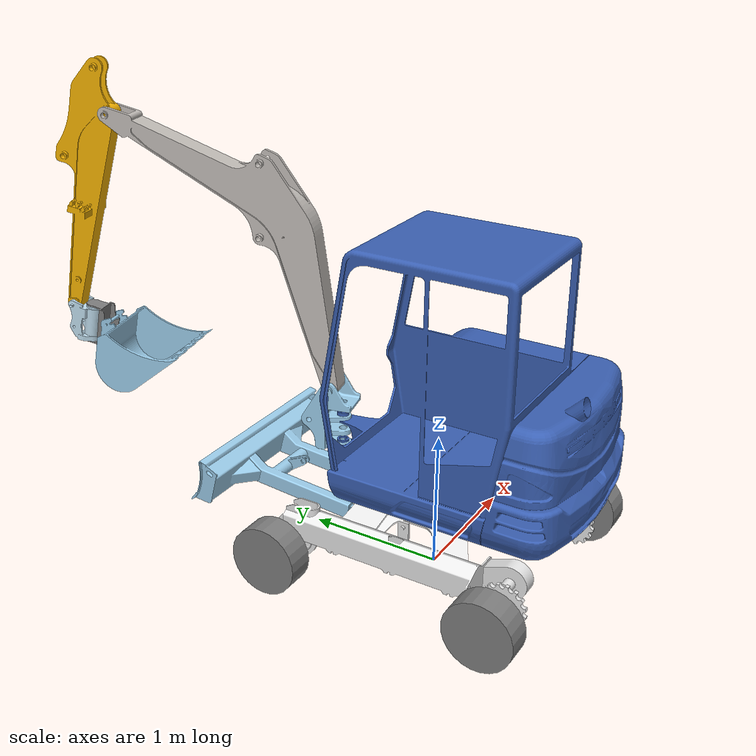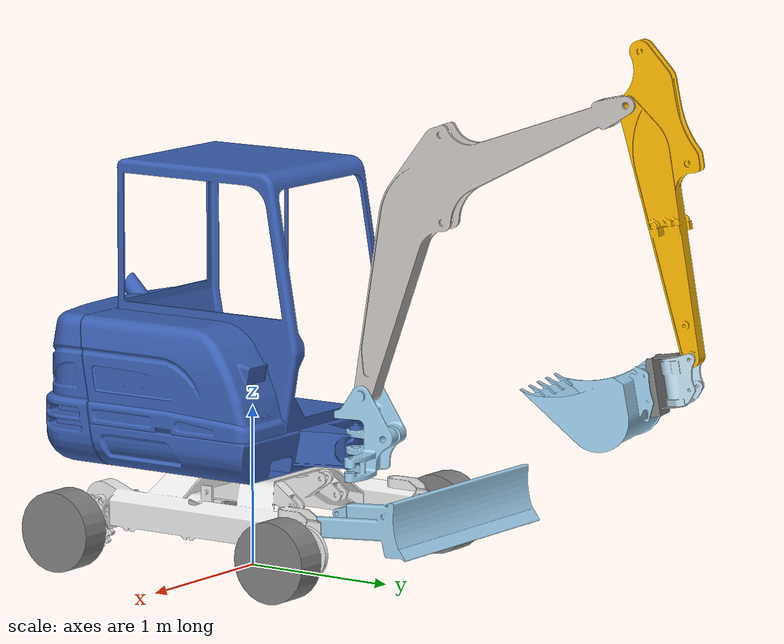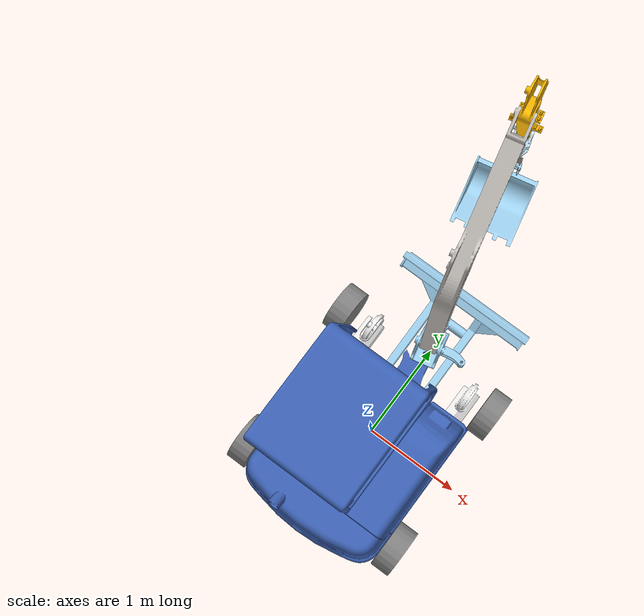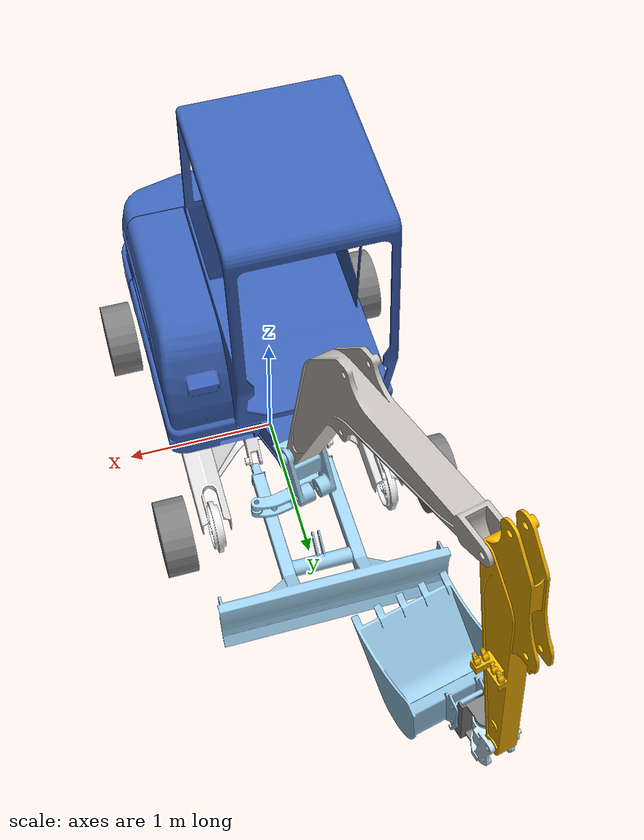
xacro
<?xml version="1.0"?>
<robot xmlns:xacro="http://www.ros.org/wiki/xacro" name="onshape">

    <xacro:property name="mesh_root" value="file://$(find urdf_visualize)/meshes"/>

    <xacro:property name="cabin_base_mesh" value="${mesh_root}/compact_excavator_cabin_body.stl"/>
    <xacro:property name="cabin_base_origin" value="0.1592 -0.2513 0.2814"/>
    <xacro:property name="cabin_base_rpy" value="0 0 0"/>
    <xacro:property name="cabin_base_mass" value="9732.8039"/>
    <xacro:property name="cabin_inertial_origin" value="-0.1469 0.4412 0.4509"/>
    <xacro:property name="cabin_inertial_rpy" value="0 0 0"/>
    <xacro:property name="cabin_base_material" value="0.2314 0.3804 0.7059 1.0"/>

    <xacro:property name="turret_base_mesh" value="${mesh_root}/compact_excavator_frame_body.stl"/>
    <xacro:property name="turret_base_origin" value="0 0 0"/>
    <xacro:property name="turret_base_rpy" value="0 0 0"/>
    <xacro:property name="turret_base_mass" value="459.1171"/>
    <xacro:property name="turret_base_inertial_origin" value="-0.0068 -0.1255 -0.1865"/>
    <xacro:property name="turret_base_inertial_rpy" value="0 0 0"/>
    <xacro:property name="turret_base_material" value="0.9176 0.9176 0.9176 1.0"/>

    <!-- Original base link -->
    <link name="base_link"/>
    <link name="cabin_base">
        <visual>
            <origin xyz="${cabin_base_origin}" rpy="${cabin_base_rpy}" />
            <geometry>
                <mesh filename="${cabin_base_mesh}"/>
            </geometry>
            <material name="compact_excavator_cabin_body_material">
                <color rgba="${cabin_base_material}"/>
            </material>
        </visual>
        <collision>
            <origin xyz="${cabin_base_origin}" rpy="${cabin_base_rpy}" />
            <geometry>
                <mesh filename="${cabin_base_mesh}"/>
            </geometry>
        </collision>
        <inertial>
            <origin xyz="${cabin_inertial_origin}" rpy="${cabin_inertial_rpy}"/>
            <mass value="${cabin_base_mass}" />
            <inertia ixx="3175.1655302028038932" ixy="-269.97312494382822479"  ixz="167.61780128589879268" iyy="2627.6328649732372469" iyz="-193.85494965010886403" izz="3742.616047274826542" />
        </inertial>
    </link>
    <link name="turret_base">
        <visual>
            <origin xyz="${turret_base_origin}" rpy="${turret_base_rpy}" />
            <geometry>
                <mesh filename="${turret_base_mesh}"/>
            </geometry>
            <material name="compact_excavator_frame_body_material">
                <color rgba="${turret_base_material}"/>
            </material>
        </visual>
        <collision>
            <origin xyz="${turret_base_origin}" rpy="${turret_base_rpy}" />
            <geometry>
                <mesh filename="${turret_base_mesh}"/>
            </geometry>
        </collision>
        <inertial>
            <origin xyz="${turret_base_inertial_origin}" rpy="${turret_base_inertial_rpy}"/>
            <mass value="${turret_base_mass}" />
            <inertia ixx="103.54309263053609413" ixy="2.8689912175751035583"  ixz="-0.26918599165092144121" iyy="71.550382439979060223" iyz="-8.7881744003938315757" izz="164.71779214088334697" />
        </inertial>
    </link>

    <link name="left_spinning_wheel_link">
        <visual>
            <origin xyz="0 -2.0816681711721685133e-17 -0.015000000000000124345" rpy="-4.71 0 0" />
            <geometry>
            <mesh filename="${mesh_root}/compact_excavator_main_drive_wheel.stl"/>
            </geometry>
            <material name="compact_excavator_main_drive_wheel_material">
            <color rgba="0.91764705882352937127 0.91764705882352937127 0.91764705882352937127 1.0"/>
            </material>
        </visual>
        <collision>
            <origin xyz="0 -2.0816681711721685133e-17 -0.015000000000000124345" rpy="-4.71 0 0" />
            <geometry>
            <mesh filename="${mesh_root}/compact_excavator_main_drive_wheel.stl"/>
            </geometry>
        </collision>
        <inertial>
            <origin xyz="2.7929494467705319618e-05 -2.4226277708340838271e-16 -0.047030821852304713349" rpy="0 0 0"/>
            <mass value="35.986291345795820007" />
            <inertia ixx="0.20071737580058110484" ixy="2.1151248144254331483e-17"  ixz="7.9696042408110000254e-05" iyy="0.20066206838835709547" iyz="2.9623558171777900037e-16" izz="0.29333573070696433716" />
        </inertial>
    </link>

    <link name="right_spinning_wheel_link">
        <visual>
            <origin xyz="-6.9388939039072283776e-18 0 -0.015000000000000013323" rpy="1.57 0 0" />
            <geometry>
            <mesh filename="${mesh_root}/compact_excavator_main_drive_wheel.stl"/>
            </geometry>
            <material name="compact_excavator_main_drive_wheel_material">
            <color rgba="0.91764705882352937127 0.91764705882352937127 0.91764705882352937127 1.0"/>
            </material>
        </visual>
        <collision>
            <origin xyz="-6.9388939039072283776e-18 0 -0.015000000000000013323" rpy="1.57 0 0" />
            <geometry>
            <mesh filename="${mesh_root}/compact_excavator_main_drive_wheel.stl"/>
            </geometry>
        </collision>
        <inertial>
            <origin xyz="2.7929494467698390888e-05 -2.2144767850277592569e-16 -0.047030821852304602326" rpy="0 0 0"/>
            <mass value="35.986291345795820007" />
            <inertia ixx="0.20071737580058127137" ixy="6.1250580134766935832e-18"  ixz="7.9696042408110027359e-05" iyy="0.20066206838835703996" iyz="2.9623106429686494369e-16" izz="0.29333573070696433716" />
        </inertial>
    </link>

    <link name="left_front_wheel_link">
        <visual>
            <origin xyz="1.1102230246251565404e-16 -1.1102230246251565404e-16 -0.032500000000000084377" rpy="0 1.570796326794896336 0" />
            <geometry>
            <mesh filename="${mesh_root}/compact_excavator_front_wheel.stl"/>
            </geometry>
            <material name="compact_excavator_front_wheel_material">
            <color rgba="0.91764705882352937127 0.91764705882352937127 0.91764705882352937127 1.0"/>
            </material>
        </visual>
        <collision>
            <origin xyz="1.1102230246251565404e-16 -1.1102230246251565404e-16 -0.032500000000000084377" rpy="0 1.570796326794896336 0" />
            <geometry>
            <mesh filename="${mesh_root}/compact_excavator_front_wheel.stl"/>
            </geometry>
        </collision>
        <inertial>
            <origin xyz="8.8979772495497043726e-17 -1.1262368284473494847e-16 -0.032500000000000070499" rpy="0 0 0"/>
            <mass value="17.64673591392957519" />
            <inertia ixx="0.153078316536178205" ixy="1.0629206596102168903e-17"  ixz="2.6922495826861160064e-17" iyy="0.15307831653617814949" iyz="6.9747558075870228735e-33" izz="0.29963755764746907717" />
        </inertial>
    </link>

    <link name="right_front_wheel_link">
        <visual>
            <origin xyz="0 0 -0.032500000000000084377" rpy="-3.14 -1.570796326794896336 0" />
            <geometry>
            <mesh filename="${mesh_root}/compact_excavator_front_wheel.stl"/>
            </geometry>
            <material name="compact_excavator_front_wheel_material">
            <color rgba="0.91764705882352937127 0.91764705882352937127 0.91764705882352937127 1.0"/>
            </material>
        </visual>
        <collision>
            <origin xyz="0 0 -0.032500000000000084377" rpy="-3.14 -1.570796326794896336 0" />
            <geometry>
            <mesh filename="${mesh_root}/compact_excavator_front_wheel.stl"/>
            </geometry>
        </collision>
        <inertial>
            <origin xyz="-2.2042529967018601071e-17 1.6013803822193002062e-18 -0.032500000000000098255" rpy="0 0 0"/>
            <mass value="17.64673591392957519" />
            <inertia ixx="0.153078316536178205" ixy="-3.7736718547636912232e-33"  ixz="-2.6922495826861147738e-17" iyy="0.153078316536178205" iyz="-6.9321227369532044948e-49" izz="0.29963755764746907717" />
        </inertial>
    </link>

    <link name="push_blade_bucket">
        <visual>
            <origin xyz="-0.021564399534920564161 1.0799900599760599018 -0.25500000000000000444" rpy="-3.14 -1.57 0" />
            <geometry>
            <mesh filename="${mesh_root}/push_blade_bucket.stl"/>
            </geometry>
            <material name="push_blade_bucket_material">
            <color rgba="0.61568627450980395466 0.81176470588235294379 0.92941176470588238168 1.0"/>
            </material>
        </visual>
        <collision>
            <origin xyz="-0.021564399534920564161 1.0799900599760599018 -0.25500000000000000444" rpy="-3.14 -1.57 0" />
            <geometry>
            <mesh filename="${mesh_root}/push_blade_bucket.stl"/>
            </geometry>
        </collision>
        <inertial>
            <origin xyz="-0.10970493109347190241 0.88075063461342828486 -0.25500033703320834633" rpy="0 0 0"/>
            <mass value="147.01808168083425699" />
            <inertia ixx="31.881096131626421197" ixy="0.91247385061899932701"  ixz="-1.6212090668492922982e-05" iyy="21.196220352263214437" iyz="4.9900082202379639952e-06" izz="13.169227707961496776" />
        </inertial>
    </link>

    <link name="swing_base">
        <visual>
            <origin xyz="2.7755575615628913511e-17 0.074999999999999955591 -0.14999999999999996669" rpy="-3.14 -6.1629758220391547298e-33 -3.9110122218931175387e-17" />
            <geometry>
            <mesh filename="${mesh_root}/part01_pin_1.stl"/>
            </geometry>
            <material name="part01_pin_1_material">
            <color rgba="0.61568627450980395466 0.81176470588235294379 0.92941176470588238168 1.0"/>
            </material>
        </visual>
        <collision>
            <origin xyz="2.7755575615628913511e-17 0.074999999999999955591 -0.14999999999999996669" rpy="-3.14 -6.1629758220391547298e-33 -3.9110122218931175387e-17" />
            <geometry>
            <mesh filename="${mesh_root}/part01_pin_1.stl"/>
            </geometry>
        </collision>
        <inertial>
            <origin xyz="-0.026030309007671018073 0.10672288733099301317 0.097553850513847364945" rpy="0 0 0"/>
            <mass value="98.140190062279060612" />
            <inertia ixx="2.6085778666185075458" ixy="0.040227300901953748358"  ixz="0.42136783119553594679" iyy="3.1665232143977135593" iyz="-0.15916376835413623136" izz="1.7889951810686841593" />
        </inertial>
    </link>

    <link name="boom_base">
        <visual>
            <origin xyz="0 -1.1102230246251565404e-16 -0.079999999999999987788" rpy="-1.57 0 0" />
            <geometry>
            <mesh filename="${mesh_root}/part02.stl"/>
            </geometry>
            <material name="part02_material">
            <color rgba="0.77647058823529413463 0.7568627450980391913 0.73725490196078435901 1.0"/>
            </material>
        </visual>
        <collision>
            <origin xyz="0 -1.1102230246251565404e-16 -0.079999999999999987788" rpy="-1.57 0 0" />
            <geometry>
            <mesh filename="${mesh_root}/part02.stl"/>
            </geometry>
        </collision>
        <inertial>
            <origin xyz="-0.04007940207094668611 1.215334476695421273 -0.079873417172118876817" rpy="0 0 0"/>
            <mass value="694.17793513858055121" />
            <inertia ixx="242.81245205849677404" ixy="71.370938403077758494"  ixz="0.0065905643878567711502" iyy="49.641340591529456105" iyz="-0.034260052091464154866" izz="289.83702909122945357" />
        </inertial>
    </link>

    <link name="arm_base">
        <visual>
            <origin xyz="0 -2.2204460492503130808e-16 -0.054999999999999882316" rpy="1.57 0 0" />
            <geometry>
            <mesh filename="${mesh_root}/part03.stl"/>
            </geometry>
            <material name="part03_material">
            <color rgba="0.98039215686274505668 0.71372549019607844922 0.0039215686274509803377 1.0"/>
            </material>
        </visual>
        <collision>
            <origin xyz="0 -2.2204460492503130808e-16 -0.054999999999999882316" rpy="1.57 0 0" />
            <geometry>
            <mesh filename="${mesh_root}/part03.stl"/>
            </geometry>
        </collision>
        <inertial>
            <origin xyz="0.10866226733951289685 -0.60164797350906107365 -0.055167291851018741833" rpy="0 0 0"/>
            <mass value="265.34907807560875881" />
            <inertia ixx="57.599134249663784146" ixy="0.078442580554215754485"  ixz="0.0049826290162324230956" iyy="1.8968981412117758012" iyz="0.02459901605653430981" izz="58.868680211308259231" />
        </inertial>
    </link>

    <link name="bucket_base">
        <visual>
            <origin xyz="0.060000000000000053291 0.14000000000000012434 0.054999999999999993339" rpy="-3.14 -1.57 0" />
            <geometry>
            <mesh filename="${mesh_root}/part04.stl"/>
            </geometry>
            <material name="part04_material">
            <color rgba="0.76862745098039220171 0.88627450980392152857 0.95294117647058818044 1.0"/>
            </material>
        </visual>
        <collision>
            <origin xyz="0.060000000000000053291 0.14000000000000012434 0.054999999999999993339" rpy="-3.14 -1.57 0" />
            <geometry>
            <mesh filename="${mesh_root}/part04.stl"/>
            </geometry>
        </collision>

        <visual>
            <origin xyz="0.078718096856630614955 0.97961106773940276327 0.054999999999992416067" rpy="-1.57 0 3" />
            <geometry>
            <mesh filename="${mesh_root}/bucket.stl"/>
            </geometry>
            <material name="bucket_material">
            <color rgba="0.61568627450980395466 0.81176470588235294379 0.92941176470588238168 1.0"/>
            </material>
        </visual>
        <collision>
            <origin xyz="0.078718096856630614955 0.97961106773940276327 0.054999999999992416067" rpy="-1.57 0 3" />
            <geometry>
            <mesh filename="${mesh_root}/bucket.stl"/>
            </geometry>
        </collision>

        <visual>
            <origin xyz="0.16999999999999237943 0.30800000000000604672 0.054999999999999299449" rpy="-4.71 -1.57 0" />
            <geometry>
            <mesh filename="${mesh_root}/bucket_mount.stl"/>
            </geometry>
            <material name="bucket_mount_material">
            <color rgba="0.49803921568627451677 0.49803921568627451677 0.49803921568627451677 1.0"/>
            </material>
        </visual>
        <collision>
            <origin xyz="0.16999999999999237943 0.30800000000000604672 0.054999999999999299449" rpy="-4.71 -1.57 0" />
            <geometry>
            <mesh filename="${mesh_root}/bucket_mount.stl"/>
            </geometry>
        </collision>
        <inertial>
            <origin xyz="0.21363777998579594475 0.42618058483691984017 0.055071497454761988988" rpy="0 0 0"/>
            <mass value="132.70765933863819441" />
            <inertia ixx="14.03567187790122972" ixy="-1.6652440163767181502"  ixz="0.0020270508814650067472" iyy="6.8549730106956987541" iyz="0.0040437120644442776929" izz="11.610921270718170817" />
        </inertial>
    </link>

    <xacro:property name="rubber_density" value="1100"/>
    <xacro:property name="wheel_radius" value="0.25"/>
    <xacro:property name="wheel_length" value="0.2"/>
    <xacro:property name="wheel_mass" value="${100*3.1415*(wheel_radius**2)*wheel_length*rubber_density}"/>
    <xacro:property name="wheel_ixx" value="${(1/12)*wheel_mass*(3*wheel_radius**2 + wheel_length**2)}"/>
    <xacro:property name="wheel_iyy" value="${(1/12)*wheel_mass*(3*wheel_radius**2 + wheel_length**2)}"/>
    <xacro:property name="wheel_izz" value="${(1/2)*wheel_mass*wheel_radius**2}"/>

    <link name="left_skid_wheel_spinning">
        <visual>
            <origin xyz="0 0 0" rpy="0 0 0"/>
            <geometry>
                <cylinder radius="${wheel_radius}" length="${wheel_length}"/>
            </geometry>
            <material name="wheel_material">
                <color rgba="0.5 0.5 0.5 1.0"/>
            </material>
        </visual>
        <collision>
            <origin xyz="0 0 0" rpy="0 0 0"/>
            <geometry>
                <cylinder radius="${wheel_radius}" length="${wheel_length}"/>
            </geometry>
        </collision>
        <surface>
            <friction>
                <ode>
                    <mu>1</mu>
                    <mu2>1</mu2>
                </ode>
            </friction>
        </surface>
        <inertial>
            <origin xyz="0 0 0" rpy="0 0 0"/>
            <mass value="${wheel_mass}"/>
            <inertia ixx="${wheel_ixx}" ixy="0" ixz="0" iyy="${wheel_ixx}" iyz="0" izz="${wheel_ixx}"/>
        </inertial>
    </link>

    <link name="left_skid_wheel_free">
        <visual>
            <origin xyz="0 0 0" rpy="0 0 0"/>
            <geometry>
                <cylinder radius="${wheel_radius}" length="${wheel_length}"/>
            </geometry>
            <material name="wheel_material">
                <color rgba="0.5 0.5 0.5 1.0"/>
            </material>
        </visual>
        <collision>
            <origin xyz="0 0 0" rpy="0 0 0"/>
            <geometry>
                <cylinder radius="${wheel_radius}" length="${wheel_length}"/>
            </geometry>
        </collision>
        <surface>
            <friction>
                <ode>
                    <mu>1</mu>
                    <mu2>1</mu2>
                </ode>
            </friction>
        </surface>
        <inertial>
            <origin xyz="0 0 0" rpy="0 0 0"/>
            <mass value="${wheel_mass}"/>
            <inertia ixx="${wheel_ixx}" ixy="0" ixz="0" iyy="${wheel_ixx}" iyz="0" izz="${wheel_ixx}"/>
        </inertial>
    </link>

    <link name="right_skid_wheel_spinning">
        <visual>
            <origin xyz="0 0 0" rpy="0 0 0"/>
            <geometry>
                <cylinder radius="${wheel_radius}" length="${wheel_length}"/>
            </geometry>
            <material name="wheel_material">
                <color rgba="0.5 0.5 0.5 1.0"/>
            </material>
        </visual>
        <collision>
            <origin xyz="0 0 0" rpy="0 0 0"/>
            <geometry>
                <cylinder radius="${wheel_radius}" length="${wheel_length}"/>
            </geometry>
        </collision>
        <surface>
            <friction>
                <ode>
                    <mu>1</mu>
                    <mu2>1</mu2>
                </ode>
            </friction>
        </surface>
        <inertial>
            <origin xyz="0 0 0" rpy="0 0 0"/>
            <mass value="${wheel_mass}"/>
            <inertia ixx="${wheel_ixx}" ixy="0" ixz="0" iyy="${wheel_ixx}" iyz="0" izz="${wheel_ixx}"/>
        </inertial>
    </link>

    <link name="right_skid_wheel_free">
        <visual>
            <origin xyz="0 0 0" rpy="0 0 0"/>
            <geometry>
                <cylinder radius="${wheel_radius}" length="${wheel_length}"/>
            </geometry>
            <material name="wheel_material">
                <color rgba="0.5 0.5 0.5 1.0"/>
            </material>
        </visual>
        <collision>
            <origin xyz="0 0 0" rpy="0 0 0"/>
            <geometry>
                <cylinder radius="${wheel_radius}" length="${wheel_length}"/>
            </geometry>
        </collision>
        <surface>
            <friction>
                <ode>
                    <mu>1</mu>
                    <mu2>1</mu2>
                </ode>
            </friction>
        </surface>
        <inertial>
            <origin xyz="0 0 0" rpy="0 0 0"/>
            <mass value="${wheel_mass}"/>
            <inertia ixx="${wheel_ixx}" ixy="0" ixz="0" iyy="${wheel_ixx}" iyz="0" izz="${wheel_ixx}"/>
        </inertial>
    </link>

    <xacro:macro name="gazebo_joints">
        <gazebo>
            <joint>
                <stiffness>1000.0</stiffness>
                <damping>500</damping>
            </joint>
        </gazebo>
    </xacro:macro>

    <joint name="left_spin_to_skid" type="fixed">
        <origin xyz="0 0 -0.3" rpy="0 0 0"/>
        <parent link="left_spinning_wheel_link"/>
        <child link="left_skid_wheel_spinning"/>
        <axis xyz="0 0 1"/>
        <xacro:gazebo_joints/>
    </joint>

    <joint name="left_free_to_skid" type="fixed">
        <origin xyz="0 0 0.3" rpy="0 0 0"/>
        <parent link="left_front_wheel_link"/>
        <child link="left_skid_wheel_free"/>
        <axis xyz="0 0 1"/>
        <xacro:gazebo_joints/>
    </joint>

    <joint name="right_spin_to_skid" type="fixed">
        <origin xyz="0 0 -0.3" rpy="0 0 0"/>
        <parent link="right_spinning_wheel_link"/>
        <child link="right_skid_wheel_spinning"/>
        <axis xyz="0 0 1"/>
        <xacro:gazebo_joints/>
    </joint>

    <joint name="right_free_to_skid" type="fixed">
        <origin xyz="0 0 -0.3" rpy="0 0 0"/>
        <parent link="right_front_wheel_link"/>
        <child link="right_skid_wheel_free"/>
        <axis xyz="0 0 1"/>
        <limit effort="1000" velocity="1"/>
        <xacro:gazebo_joints/>
    </joint>

    <joint name="base_to_turret" type="fixed">
        <origin xyz="0 0 0.55" rpy="0 0 0" />
        <parent link="base_link" />
        <child link="turret_base" />
        <axis xyz="0 0 1"/>
    </joint>

    <joint name="left_spinning_wheel" type="continuous">
        <origin xyz="-0.5739999999999999547 -0.80000000000000015543 -0.2750000000000000222" rpy="1.570796326794896558 -0.3547477759675310427 1.5707963267948976682" />
        <parent link="turret_base" />
        <child link="left_spinning_wheel_link" />
        <axis xyz="0 0 1"/>
        <limit effort="1000" velocity="1" />
        <xacro:gazebo_joints/>
    </joint>

    <joint name="right_spinning_wheel" type="continuous">
        <origin xyz="0.5739999999999999547 -0.80000000000000004441 -0.2750000000000000222" rpy="1.570796326794896558 -1.2984776443375001254 -1.5707963267948972241" />
        <parent link="turret_base" />
        <child link="right_spinning_wheel_link" />
        <axis xyz="0 0 1"/>
        <limit effort="1000" velocity="1" />
        <xacro:gazebo_joints/>
    </joint>

    <joint name="left_passive_wheel" type="continuous">
        <origin xyz="-0.61299999999999998934 0.80000000000000026645 -0.2750000000000000222" rpy="1.570796326794896558 -1.0222876983448163646 -1.5707963267948941155" />
        <parent link="turret_base" />
        <child link="left_front_wheel_link" />
        <axis xyz="0 0 1"/>
        <limit effort="1000" velocity="1" />
        <xacro:gazebo_joints/>
    </joint>

    <joint name="right_passive_wheel" type="continuous">
        <origin xyz="0.54800000000000004263 0.80000000000000015543 -0.27499999999999996669" rpy="1.57079632679489678 -1.1102232252180887662e-16 -1.5707963267948976682" />
        <parent link="turret_base" />
        <child link="right_front_wheel_link" />
        <axis xyz="0 0 1"/>
        <limit effort="1000" velocity="1" />
        <xacro:gazebo_joints/>
    </joint>

    <joint name="plow_to_base" type="revolute">
        <origin xyz="-0.25500000000000005995 0.4880000000000002669 -0.20500000000000001554" rpy="1.570796326794896558 -1.3195606112546109934 -1.57079632679489678" />
        <parent link="turret_base" />
        <child link="push_blade_bucket" />
        <axis xyz="0 0 1"/>
        <limit effort="1000" velocity="1" lower="0.2" upper="0" />
        <xacro:gazebo_joints/>
    </joint>

    <joint name="excavator_slew" type="continuous">
        <origin xyz="0 0 0.1" rpy="-5.5511151231419568159e-17 -1.1102230246202266528e-16 -3.1415" />
        <parent link="turret_base" />
        <child link="cabin_base" />
        <axis xyz="0 0 1"/>
        <limit effort="1000" velocity="1" />
        <xacro:gazebo_joints/>
    </joint>

    <joint name="arm_to_bucket" type="revolute">
        <origin xyz="0.12000000000000410338 -1.5403327562575612752 9.4368957093138305936e-16" rpy="3.1415926535897917837 1.8859935444767496044e-16 -1.5963552846072552871" />
        <parent link="arm_base" />
        <child link="bucket_base" />
        <axis xyz="0 0 1"/>
        <limit effort="1000" velocity="1" lower="-1.2217304763960306069" upper="0.87266462599716476678"/>
        <xacro:gazebo_joints/>
    </joint>

    <joint name="boom_to_arm" type="revolute">
        <origin xyz="-0.84000000000000030198 2.3549999999999999822 -0.13500000000000003664" rpy="3.1415926535897922278 6.9325343981756730312e-15 2.5555644018935783635" />
        <parent link="boom_base" />
        <child link="arm_base" />
        <axis xyz="0 0 1"/>
        <limit effort="1000" velocity="1" lower="-0.5" upper="1.57"/>
        <xacro:gazebo_joints/>
    </joint>

    <joint name="swing_to_boom" type="revolute">
        <origin xyz="0.079999999999996157518 0.074999999999997291056 -0.1500000000000039635" rpy="-1.570796326794896558 0.39285813115170314935 -1.5707963267949009989" />
        <parent link="swing_base" />
        <child link="boom_base" />
        <axis xyz="0 0 1"/>
        <limit effort="1000" velocity="1" lower="-0.4" upper="0.4" />
        <xacro:gazebo_joints/>
    </joint>

    <joint name="cabin_to_swing" type="revolute">
        <origin xyz="-0.040707723917193447405 -0.80673603465099630316 0.38039999999999996039" rpy="3.141592653589793116 4.8797124238540929311e-17 0.21446312817660284633" />
        <parent link="cabin_base" />
        <child link="swing_base" />
        <axis xyz="0 0 1"/>
        <limit effort="1000" velocity="1" lower="-1" upper="1.57" />
        <xacro:gazebo_joints/>
    </joint>

    <xacro:macro name="gazebo_ros2_control_joints" params="name">
        <joint name="${name}">
            <command_interface name="effort">
                <param name="min">-1000</param>
                <param name="max">1000</param>
            </command_interface>
            <state_interface name="position"/>
            <state_interface name="velocity"/>
            <state_interface name="effort"/>
        </joint>
    </xacro:macro>
    <xacro:macro name="simple_transmission" params="name">
        <transmission name="${name}_trans">
            <type>transmission_interface/SimpleTransmission</type>
            <joint name="${name}">
            <hardwareInterface>effort</hardwareInterface>
            </joint>
            <actuator name="${name}_motor">
            <hardwareInterface>effort</hardwareInterface>
            <mechanicalReduction>1</mechanicalReduction>
            </actuator>
        </transmission>
    </xacro:macro>

    <xacro:simple_transmission name="excavator_slew"/>
    <xacro:simple_transmission name="plow_to_base"/>
    <xacro:simple_transmission name="arm_to_bucket"/>
    <xacro:simple_transmission name="boom_to_arm"/>
    <xacro:simple_transmission name="swing_to_boom"/>
    <xacro:simple_transmission name="cabin_to_swing"/>

    <ros2_control name="GazeboSystem" type="system">
    <hardware>
        <plugin>gazebo_ros2_control/GazeboSystem</plugin>
    </hardware>
    <xacro:gazebo_ros2_control_joints name="excavator_slew"/>
    <xacro:gazebo_ros2_control_joints name="plow_to_base"/>
    <xacro:gazebo_ros2_control_joints name="arm_to_bucket"/>
    <xacro:gazebo_ros2_control_joints name="boom_to_arm"/>
    <xacro:gazebo_ros2_control_joints name="swing_to_boom"/>
    <xacro:gazebo_ros2_control_joints name="cabin_to_swing"/>
    </ros2_control>

    <gazebo>
        <plugin filename="libgazebo_ros2_control.so" name="gazebo_ros2_control">
            <parameters>$(find sambot_description)/params/ros2_controllers.yaml</parameters>
        </plugin>
    </gazebo>

    <!-- skidsteer -->
    <gazebo>
        <plugin name="two_wheeled_robot_diff_drive" filename="libgazebo_ros_diff_drive.so">
            <num_wheel_pairs>2</num_wheel_pairs>

            <left_joint>left_spinning_wheel</left_joint>
            <left_joint>left_passive_wheel</left_joint>
            <right_joint>right_spinning_wheel</right_joint>
            <right_joint>right_passive_wheel</right_joint>

            <wheel_separation>1.75</wheel_separation>
            <wheel_separation>1.75</wheel_separation>

            <wheel_diameter>${wheel_radius*2}</wheel_diameter>
            <wheel_diameter>${wheel_radius*2}</wheel_diameter>

            <max_wheel_torque>1000</max_wheel_torque>
            <max_wheel_acceleration>1.0</max_wheel_acceleration>

            <publish_odom>true</publish_odom>
            <publish_odom_tf>true</publish_odom_tf>
            <publish_wheel_tf>true</publish_wheel_tf>

            <odometry_frame>odom</odometry_frame>
            <robot_base_frame>base_link</robot_base_frame>
        </plugin>
    </gazebo>

</robot>
